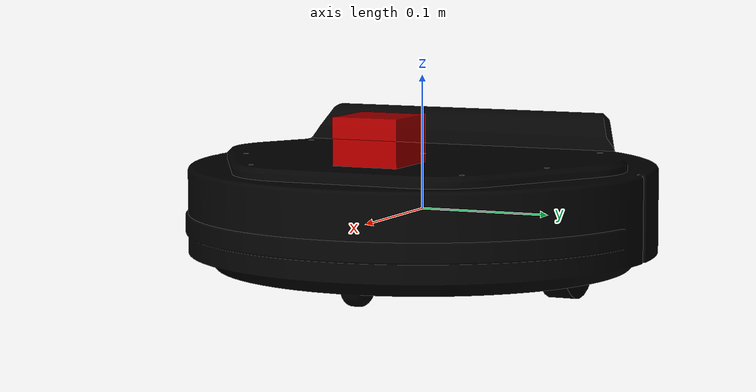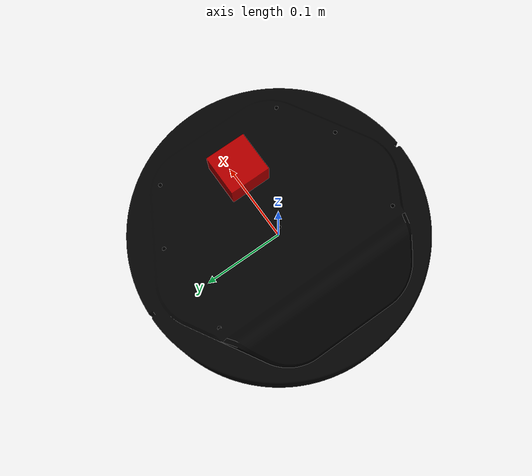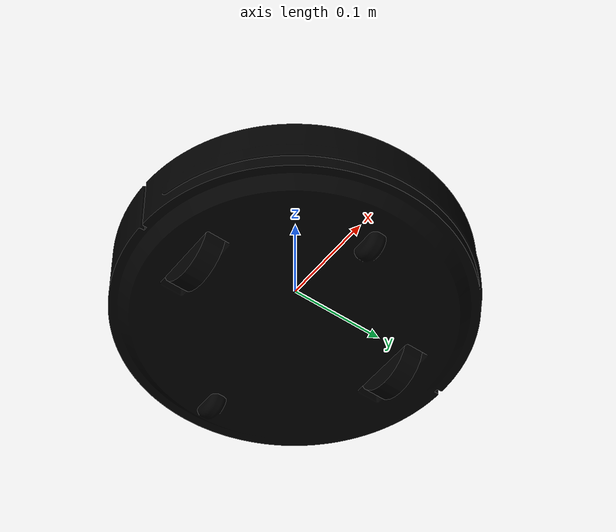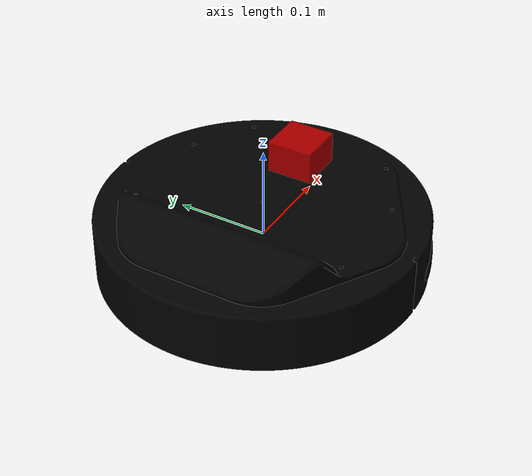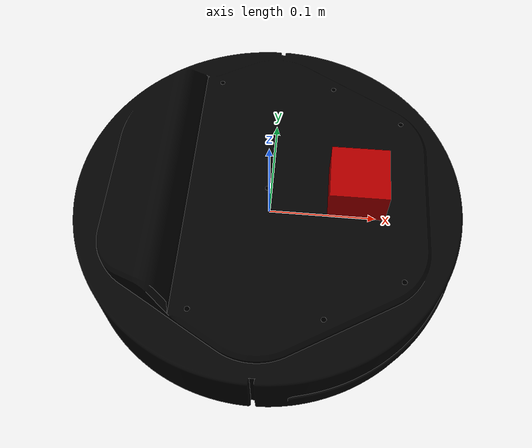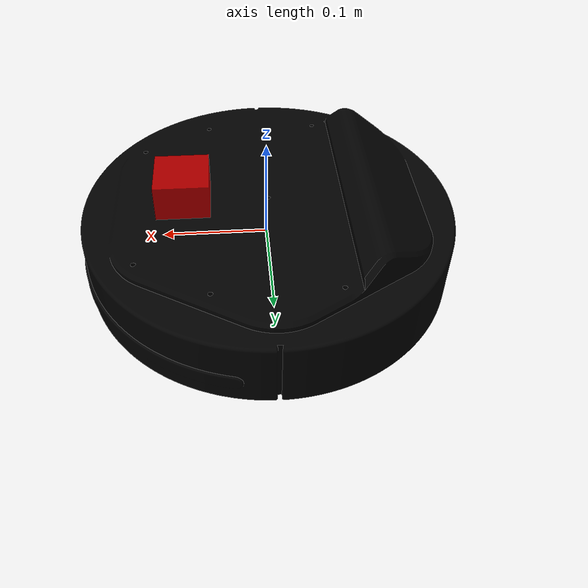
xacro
<?xml version="1.0"?>
<robot xmlns:xacro="http://www.ros.org/wiki/xacro" >

    <xacro:include filename="inertial_macros.xacro"/>

    <material name="white">
        <color rgba="1 1 1 1" />
    </material>

    <material name="orange">
        <color rgba="1 0.3 0.1 1"/>
    </material>

    <material name="blue">
        <color rgba="0.2 0.2 1 1"/>
    </material>

    <material name="black">
        <color rgba="0 0 0 1"/>
    </material>

    <!-- BASE LINK -->

    <link name="base_footprint">

    </link>

    <!-- CHASSIS LINK -->

    <joint name="chassis_joint" type="fixed">
        <parent link="base_footprint"/>
        <child link="base_link"/>
        <origin xyz="0 0 0" rpy="0 0 0"/>
    </joint>

    <link name="base_link">
      <visual>
        <geometry>
          <!-- new mesh -->
          <!--mesh filename="file://$(find articubot_one)/meshes/microwave.stl" scale="0.01 0.01 0.01"/-->
          <mesh filename="file://$(find jaime_vs)/meshes/kobuki_base.stl" scale="0.01 0.01 0.01"/>
          <!--mesh filename="package://install/package_name/share/package_name/meshes/kobuki_base.stl" scale="0.01 0.01 0.01"/-->
          <!--cylinder radius="0.015" length="0.0206"/-->
        </geometry>
        <material name="black"/>
        <origin xyz="0.0 0 -0.055" rpy="${pi/2} 0 ${pi/2}"/>
      </visual>
      <collision>
        <geometry>
          <cylinder length="0.10938" radius="0.178"/>
        </geometry>
        <origin xyz="0.0 0 0.0" rpy="0 0 0"/>
      </collision>
      <inertial>
        <!-- COM experimentally determined -->
        <origin xyz="0.01 0 0"/>
        <mass value="2.4"/> <!-- 2.4/2.6 kg for small/big battery pack -->
        <inertia ixx="0.019995" ixy="0.0" ixz="0.0"
                 iyy="0.019995" iyz="0.0"
                 izz="0.03675" />
      </inertial>
    </link>

    <gazebo reference="base_link">
        <material>Gazebo/White</material>
    </gazebo>

    <!-- LEFT WHEEL LINK -->

    <joint name="left_wheel_joint" type="continuous">
        <parent link="base_footprint"/>
        <child link="left_wheel"/>
        <origin xyz="0 0.115 -0.025" rpy="-${pi/2} 0 0" />
        <axis xyz="0 0 1"/>
    </joint>

    <link name="left_wheel">
        <visual>
            <geometry>
                <!--mesh filename="file:///home/michela/dev_ws/src/articubot_one/meshes/wheel.dae" scale="0.01 0.01 0.01"/-->
                <cylinder radius="0.035" length="0.0206"/>
            </geometry>
            <material name="black"/>
        </visual>
        <collision>
            <geometry>
                <cylinder radius="0.035" length="0.0206"/>
            </geometry>
        </collision>
        <xacro:inertial_cylinder mass="0.1" length="0.0206" radius="0.035">
            <origin xyz="0 0.115 -0.025" rpy="-${pi/2} 0 0"/>
        </xacro:inertial_cylinder>
    </link>

    <gazebo reference="left_wheel">
        <material>Gazebo/Blue</material>
    </gazebo>

    <!-- RIGHT WHEEL LINK -->

    <joint name="right_wheel_joint" type="continuous">
        <parent link="base_footprint"/>
        <child link="right_wheel"/>
        <origin xyz="0 -0.115 -0.025" rpy="${pi/2} 0 0" />
        <axis xyz="0 0 -1"/>
    </joint>

    <link name="right_wheel">
        <visual>
            <geometry>
                <!--mesh filename="file:///home/michela/dev_ws/src/articubot_one/meshes/wheel.dae" scale="0.01 0.01 0.01"/-->
                <cylinder radius="0.035" length="0.0206"/>
            </geometry>
            <material name="black"/>
        </visual>
        <collision>
            <geometry>
                <cylinder radius="0.035" length="0.0206"/>
            </geometry>
        </collision>
        <xacro:inertial_cylinder mass="0.1" length="0.0206" radius="0.035">
            <origin xyz="0 -0.115 -0.025" rpy="${pi/2} 0 0"/>
        </xacro:inertial_cylinder>
    </link>

    <gazebo reference="right_wheel">
        <material>Gazebo/Blue</material>
    </gazebo>

    <!-- CASTER WHEEL LINK -->

    <!-- uso del lidar -->

    <link name="laser">
      <visual>
        <origin xyz="0 0 0.003"/>
        <geometry>
          <box size="0.079 0.05 0.006"/>
        </geometry>
    <material name="support">
      <color rgba="0.5 0.5 0.5 1.0"/>
    </material>
  </visual>
  <visual>
    <origin xyz="0 0 0.041"/>
    <geometry>
      <box size="0.05 0.05 0.07"/>
    </geometry>
    <material name="lidar">
      <color rgba="1.0 0.0 0.0 0.7"/>
    </material>
  </visual>
  <collision>
    <origin xyz="0 0 0.003"/>
    <geometry>
      <box size="0.079 0.05 0.006"/>
    </geometry>
  </collision>
  <collision>
    <origin xyz="0 0 0.041"/>
    <geometry>
      <box size="0.05 0.05 0.07"/>
    </geometry>
  </collision>
</link>

  <joint name="hokuyo_joint" type="fixed">
    <origin xyz="0.0775 0 0"/>
    <parent link="base_link"/>
    <child link="laser"/>
  </joint>

  <link name="laser_frame"/>

  <joint name="laser_joint" type="fixed">
    <origin xyz="0 0 0.064"/>
    <parent link="laser"/>
    <child link="laser_frame"/>
  </joint>

<!-- uso del lidar -->

  <!-- Kobuki's sensors -->
  <joint name="gyro_joint" type="fixed">
    <axis xyz="0 1 0"/>
    <origin xyz="0.056 0.062 0.0202" rpy="0 0 0"/>
    <parent link="base_link"/>
    <child link="gyro_link"/>
  </joint>

  <link name="gyro_link">
    <inertial>
      <mass value="0.001"/>
      <origin xyz="0 0 0" rpy="0 0 0"/>
      <inertia ixx="0.0001" ixy="0" ixz="0"
              iyy="0.000001" iyz="0"
              izz="0.0001"/>
      </inertial>
    </link>

    <gazebo reference="caster_wheel">
        <material>Gazebo/Black</material>
        <mu1 value="0.001"/>
        <mu2 value="0.001"/>
    </gazebo>

</robot>
